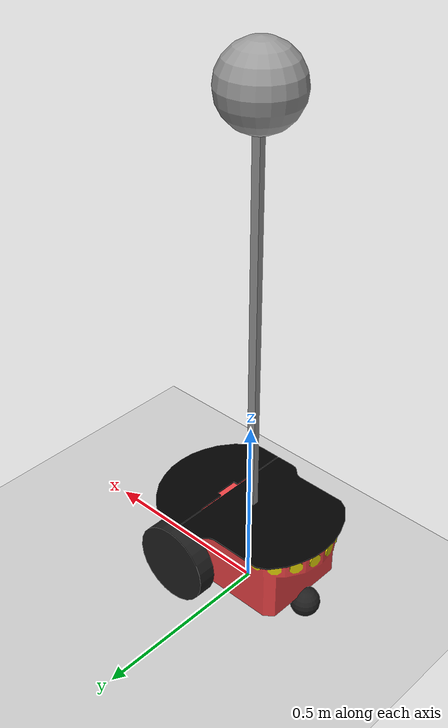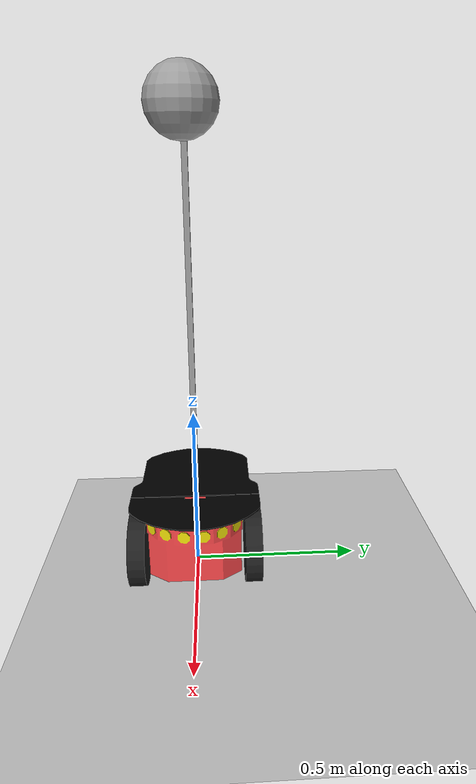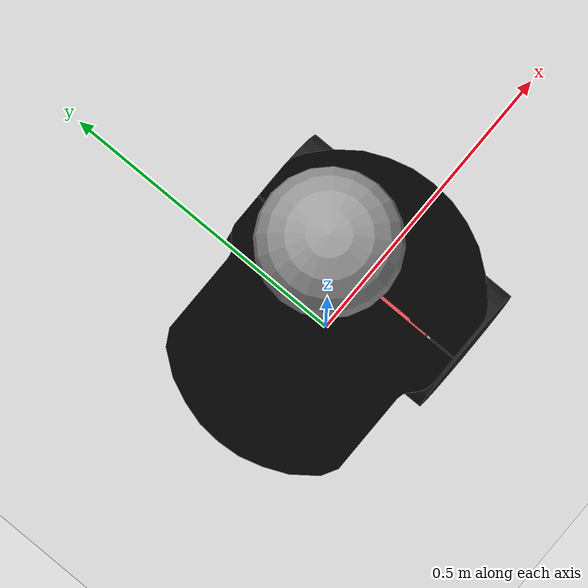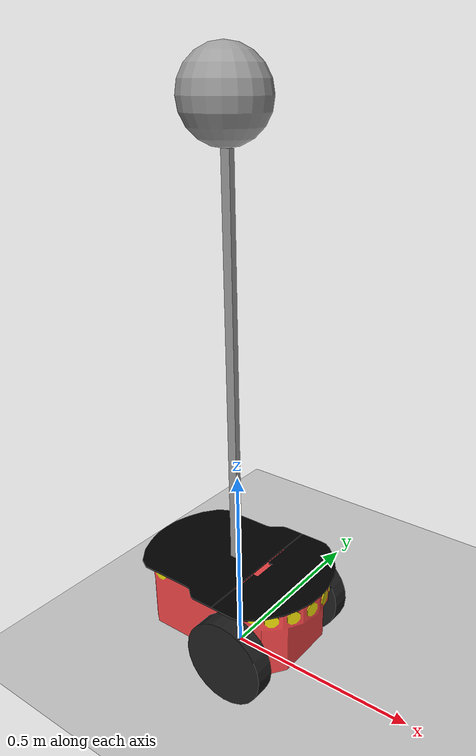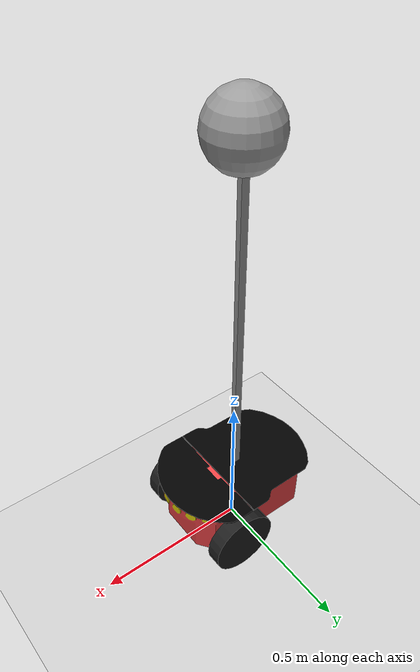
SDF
<sdf version="1.6">
 <world name="default">
  <light name="sun" type="directional">
   <pose>0 0 10 0 -0 0</pose>
   <diffuse>0.8 0.8 0.8 1</diffuse>
   <specular>0.2 0.2 0.2 1</specular>
   <attenuation>
    <range>1000</range>
    <constant>0.9</constant>
    <linear>0.01</linear>
    <quadratic>0.001</quadratic>
   </attenuation>
   <direction>-0.5 0.1 -0.9</direction>
  </light>
  <model name="ground_plane">
   <static>1</static>
   <link name="link">
    <collision name="collision">
     <geometry><plane><normal>0 0 1</normal><size>100 100</size></plane></geometry>
     <surface><friction><ode><mu>100</mu><mu2>50</mu2></ode></friction></surface>
    </collision>
    <visual name="visual">
     <cast_shadows>0</cast_shadows>
     <geometry><plane><normal>0 0 1</normal><size>100 100</size></plane></geometry>
     <material>
      <script><uri>file://media/materials/scripts/gazebo.material</uri><name>Gazebo/Grey</name></script>
     </material>
    </visual>
   </link>
  </model>
  <gravity>0 0 -9.8</gravity>
  <magnetic_field>6e-06 2.3e-05 -4.2e-05</magnetic_field>
  <atmosphere type="adiabatic"/>
  <physics name="default_physics" default="0" type="ode">
   <max_step_size>0.001</max_step_size>
   <real_time_factor>1</real_time_factor>
   <real_time_update_rate>1000</real_time_update_rate>
  </physics>
  <scene><ambient>0.4 0.4 0.4 1</ambient><background>0.7 0.7 0.7 1</background><shadows>1</shadows></scene>
  <spherical_coordinates>
   <surface_model>EARTH_WGS84</surface_model>
   <latitude_deg>0</latitude_deg>
   <longitude_deg>0</longitude_deg>
   <elevation>0</elevation>
   <heading_deg>0</heading_deg>
  </spherical_coordinates>
  <model name="pioneer2dx_ball">
   <link name="chassis">
    <pose>-0 -0 0.16 0 -0 0</pose>
    <inertial>
     <mass>5.67</mass>
     <inertia><ixx>0.07</ixx><iyy>0.08</iyy><izz>0.1</izz><ixy>0</ixy><ixz>0</ixz><iyz>0</iyz></inertia>
    </inertial>
    <self_collide>1</self_collide>
    <visual name="castor_visual">
     <pose>-0.2 0 -0.12 0 -0 0</pose>
     <geometry><sphere><radius>0.04</radius></sphere></geometry>
     <material>
      <script><uri>file://media/materials/scripts/gazebo.material</uri><name>Gazebo/FlatBlack</name></script>
      <shader type="pixel"/>
      <emissive>0 0 0 1</emissive>
     </material>
    </visual>
    <visual name="visual">
     <pose>0 0 0.04 0 -0 0</pose>
     <geometry><mesh><uri>model://pioneer2dx/meshes/chassis.dae</uri></mesh></geometry>
     <material><shader type="pixel"/><emissive>0 0 0 1</emissive></material>
    </visual>
    <collision name="collision">
     <geometry><box><size>0.445 0.277 0.17</size></box></geometry>
     <surface>
      <friction>
       <ode><mu>1</mu><mu2>1</mu2><fdir1>0 0 0</fdir1><slip1>0</slip1><slip2>0</slip2></ode>
       <torsional>
        <coefficient>1</coefficient>
        <patch_radius>0</patch_radius>
        <surface_radius>0</surface_radius>
        <use_patch_radius>1</use_patch_radius>
        <ode><slip>0</slip></ode>
       </torsional>
      </friction>
      <bounce><restitution_coefficient>0</restitution_coefficient><threshold>1e+06</threshold></bounce>
      <contact>
       <collide_without_contact>0</collide_without_contact>
       <collide_without_contact_bitmask>1</collide_without_contact_bitmask>
       <collide_bitmask>1</collide_bitmask>
       <ode>
        <soft_cfm>0</soft_cfm>
        <soft_erp>0.2</soft_erp>
        <kp>1e+13</kp>
        <kd>1</kd>
        <max_vel>0.01</max_vel>
        <min_depth>0</min_depth>
       </ode>
       <bullet>
        <split_impulse>1</split_impulse>
        <split_impulse_penetration_threshold>-0.01</split_impulse_penetration_threshold>
        <soft_cfm>0</soft_cfm>
        <soft_erp>0.2</soft_erp>
        <kp>1e+13</kp>
        <kd>1</kd>
       </bullet>
      </contact>
     </surface>
    </collision>
    <collision name="castor_collision">
     <pose>-0.2 0 -0.12 0 -0 0</pose>
     <geometry><sphere><radius>0.04</radius></sphere></geometry>
     <surface>
      <friction>
       <ode><mu>0</mu><mu2>0</mu2><fdir1>0 0 0</fdir1><slip1>1</slip1><slip2>1</slip2></ode>
       <torsional>
        <coefficient>1</coefficient>
        <patch_radius>0</patch_radius>
        <surface_radius>0</surface_radius>
        <use_patch_radius>1</use_patch_radius>
        <ode><slip>0</slip></ode>
       </torsional>
      </friction>
      <bounce><restitution_coefficient>0</restitution_coefficient><threshold>1e+06</threshold></bounce>
      <contact>
       <collide_without_contact>0</collide_without_contact>
       <collide_without_contact_bitmask>1</collide_without_contact_bitmask>
       <collide_bitmask>1</collide_bitmask>
       <ode>
        <soft_cfm>0</soft_cfm>
        <soft_erp>0.2</soft_erp>
        <kp>1e+13</kp>
        <kd>1</kd>
        <max_vel>0.01</max_vel>
        <min_depth>0</min_depth>
       </ode>
       <bullet>
        <split_impulse>1</split_impulse>
        <split_impulse_penetration_threshold>-0.01</split_impulse_penetration_threshold>
        <soft_cfm>0</soft_cfm>
        <soft_erp>0.2</soft_erp>
        <kp>1e+13</kp>
        <kd>1</kd>
       </bullet>
      </contact>
     </surface>
    </collision>
   </link>
   <link name="left_wheel">
    <pose>0.1 0.17 0.11 0.000117 1.5707 1.57082</pose>
    <inertial>
     <mass>1.5</mass>
     <inertia><ixx>0.0051</ixx><iyy>0.0051</iyy><izz>0.009</izz><ixy>0</ixy><ixz>0</ixz><iyz>0</iyz></inertia>
    </inertial>
    <visual name="visual">
     <geometry><cylinder><radius>0.11</radius><length>0.05</length></cylinder></geometry>
     <material>
      <script><uri>file://media/materials/scripts/gazebo.material</uri><name>Gazebo/FlatBlack</name></script>
      <shader type="pixel"/>
     </material>
    </visual>
    <collision name="collision">
     <geometry><cylinder><radius>0.11</radius><length>0.05</length></cylinder></geometry>
     <surface>
      <friction>
       <ode><mu>100000</mu><mu2>100000</mu2><fdir1>0 0 0</fdir1><slip1>0</slip1><slip2>0</slip2></ode>
       <torsional>
        <coefficient>1</coefficient>
        <patch_radius>0</patch_radius>
        <surface_radius>0</surface_radius>
        <use_patch_radius>1</use_patch_radius>
        <ode><slip>0</slip></ode>
       </torsional>
      </friction>
      <bounce><restitution_coefficient>0</restitution_coefficient><threshold>1e+06</threshold></bounce>
      <contact>
       <collide_without_contact>0</collide_without_contact>
       <collide_without_contact_bitmask>1</collide_without_contact_bitmask>
       <collide_bitmask>1</collide_bitmask>
       <ode>
        <soft_cfm>0</soft_cfm>
        <soft_erp>0.2</soft_erp>
        <kp>1e+13</kp>
        <kd>1</kd>
        <max_vel>0.01</max_vel>
        <min_depth>0</min_depth>
       </ode>
       <bullet>
        <split_impulse>1</split_impulse>
        <split_impulse_penetration_threshold>-0.01</split_impulse_penetration_threshold>
        <soft_cfm>0</soft_cfm>
        <soft_erp>0.2</soft_erp>
        <kp>1e+13</kp>
        <kd>1</kd>
       </bullet>
      </contact>
     </surface>
    </collision>
   </link>
   <link name="link_1">
    <inertial>
     <mass>0.000382729</mass>
     <inertia>
      <ixx>3.19027e-05</ixx>
      <ixy>0</ixy>
      <ixz>0</ixz>
      <iyy>3.19113e-05</iyy>
      <iyz>0</iyz>
      <izz>2.59062e-08</izz>
     </inertia>
    </inertial>
    <pose>-0.00873 0 0.767708 0 -0 0</pose>
    <self_collide>1</self_collide>
    <visual name="visual">
     <geometry><box><size>0.023268 0.016457 1</size></box></geometry>
     <material>
      <lighting>1</lighting>
      <script><uri>file://media/materials/scripts/gazebo.material</uri><name>Gazebo/Grey</name></script>
      <shader type="pixel"/>
      <emissive>0 0 0 1</emissive>
     </material>
    </visual>
    <collision name="collision">
     <geometry><box><size>0.023268 0.016457 1</size></box></geometry>
     <surface>
      <friction>
       <ode><mu>1</mu><mu2>1</mu2><fdir1>0 0 0</fdir1><slip1>0</slip1><slip2>0</slip2></ode>
       <torsional>
        <coefficient>1</coefficient>
        <patch_radius>0</patch_radius>
        <surface_radius>0</surface_radius>
        <use_patch_radius>1</use_patch_radius>
        <ode><slip>0</slip></ode>
       </torsional>
      </friction>
      <bounce><restitution_coefficient>0</restitution_coefficient><threshold>1e+06</threshold></bounce>
      <contact>
       <collide_without_contact>0</collide_without_contact>
       <collide_without_contact_bitmask>1</collide_without_contact_bitmask>
       <collide_bitmask>1</collide_bitmask>
       <ode>
        <soft_cfm>0</soft_cfm>
        <soft_erp>0.2</soft_erp>
        <kp>1e+13</kp>
        <kd>1</kd>
        <max_vel>0.01</max_vel>
        <min_depth>0</min_depth>
       </ode>
       <bullet>
        <split_impulse>1</split_impulse>
        <split_impulse_penetration_threshold>-0.01</split_impulse_penetration_threshold>
        <soft_cfm>0</soft_cfm>
        <soft_erp>0.2</soft_erp>
        <kp>1e+13</kp>
        <kd>1</kd>
       </bullet>
      </contact>
     </surface>
    </collision>
   </link>
   <link name="link_2">
    <inertial>
     <mass>0.5</mass>
     <inertia>
      <ixx>0.00200981</ixx>
      <ixy>0</ixy>
      <ixz>0</ixz>
      <iyy>0.00200981</iyy>
      <iyz>0</iyz>
      <izz>0.00200981</izz>
     </inertia>
    </inertial>
    <pose>-0.008115 -0.004327 1.36735 0 -0 0</pose>
    <self_collide>1</self_collide>
    <visual name="visual">
     <geometry><sphere><radius>0.100245</radius></sphere></geometry>
     <material>
      <lighting>1</lighting>
      <script><uri>file://media/materials/scripts/gazebo.material</uri><name>Gazebo/Grey</name></script>
      <shader type="pixel"><normal_map>__default__</normal_map></shader>
      <emissive>0 0 0 1</emissive>
     </material>
    </visual>
    <collision name="collision">
     <geometry><sphere><radius>0.100245</radius></sphere></geometry>
     <surface>
      <friction>
       <ode><mu>1</mu><mu2>1</mu2><fdir1>0 0 0</fdir1><slip1>0</slip1><slip2>0</slip2></ode>
       <torsional>
        <coefficient>1</coefficient>
        <patch_radius>0</patch_radius>
        <surface_radius>0</surface_radius>
        <use_patch_radius>1</use_patch_radius>
        <ode><slip>0</slip></ode>
       </torsional>
      </friction>
      <bounce><restitution_coefficient>0</restitution_coefficient><threshold>1e+06</threshold></bounce>
      <contact>
       <collide_without_contact>0</collide_without_contact>
       <collide_without_contact_bitmask>1</collide_without_contact_bitmask>
       <collide_bitmask>1</collide_bitmask>
       <ode>
        <soft_cfm>0</soft_cfm>
        <soft_erp>0.2</soft_erp>
        <kp>1e+13</kp>
        <kd>1</kd>
        <max_vel>0.01</max_vel>
        <min_depth>0</min_depth>
       </ode>
       <bullet>
        <split_impulse>1</split_impulse>
        <split_impulse_penetration_threshold>-0.01</split_impulse_penetration_threshold>
        <soft_cfm>0</soft_cfm>
        <soft_erp>0.2</soft_erp>
        <kp>1e+13</kp>
        <kd>1</kd>
       </bullet>
      </contact>
     </surface>
    </collision>
   </link>
   <link name="right_wheel">
    <pose>0.1 -0.17 0.11 0.000117 1.5707 1.57082</pose>
    <inertial>
     <mass>1.5</mass>
     <inertia><ixx>0.0051</ixx><iyy>0.0051</iyy><izz>0.009</izz><ixy>0</ixy><ixz>0</ixz><iyz>0</iyz></inertia>
    </inertial>
    <visual name="visual">
     <geometry><cylinder><radius>0.11</radius><length>0.05</length></cylinder></geometry>
     <material>
      <script><uri>file://media/materials/scripts/gazebo.material</uri><name>Gazebo/FlatBlack</name></script>
      <shader type="pixel"/>
      <emissive>0 0 0 1</emissive>
     </material>
    </visual>
    <collision name="collision">
     <geometry><cylinder><radius>0.11</radius><length>0.05</length></cylinder></geometry>
     <surface>
      <friction>
       <ode><mu>100000</mu><mu2>100000</mu2><fdir1>0 0 0</fdir1><slip1>0</slip1><slip2>0</slip2></ode>
       <torsional>
        <coefficient>1</coefficient>
        <patch_radius>0</patch_radius>
        <surface_radius>0</surface_radius>
        <use_patch_radius>1</use_patch_radius>
        <ode><slip>0</slip></ode>
       </torsional>
      </friction>
      <bounce><restitution_coefficient>0</restitution_coefficient><threshold>1e+06</threshold></bounce>
      <contact>
       <collide_without_contact>0</collide_without_contact>
       <collide_without_contact_bitmask>1</collide_without_contact_bitmask>
       <collide_bitmask>1</collide_bitmask>
       <ode>
        <soft_cfm>0</soft_cfm>
        <soft_erp>0.2</soft_erp>
        <kp>1e+13</kp>
        <kd>1</kd>
        <max_vel>0.01</max_vel>
        <min_depth>0</min_depth>
       </ode>
       <bullet>
        <split_impulse>1</split_impulse>
        <split_impulse_penetration_threshold>-0.01</split_impulse_penetration_threshold>
        <soft_cfm>0</soft_cfm>
        <soft_erp>0.2</soft_erp>
        <kp>1e+13</kp>
        <kd>1</kd>
       </bullet>
      </contact>
     </surface>
    </collision>
   </link>
   <joint name="chassis_JOINT_0" type="revolute">
    <parent>chassis</parent>
    <child>link_1</child>
    <pose>0 0 -0.5 0 -0 0</pose>
    <axis>
     <xyz>0 1 0</xyz>
     <use_parent_model_frame>0</use_parent_model_frame>
     <limit>
      <lower>-1.79769e+308</lower>
      <upper>1.79769e+308</upper>
      <effort>-1</effort>
      <velocity>-1</velocity>
     </limit>
     <dynamics>
      <spring_reference>0</spring_reference>
      <spring_stiffness>0</spring_stiffness>
      <damping>0</damping>
      <friction>0</friction>
     </dynamics>
    </axis>
    <physics>
     <ode><limit><cfm>0</cfm><erp>0.2</erp></limit><suspension><cfm>0</cfm><erp>0.2</erp></suspension></ode>
    </physics>
   </joint>
   <joint name="left_wheel_hinge" type="revolute">
    <parent>chassis</parent>
    <child>left_wheel</child>
    <pose>0 0 -0.03 0 -0 0</pose>
    <axis>
     <xyz>0 1 0</xyz>
     <use_parent_model_frame>1</use_parent_model_frame>
     <limit><lower>-1e+16</lower><upper>1e+16</upper><effort>-1</effort><velocity>-1</velocity></limit>
     <dynamics>
      <spring_reference>0</spring_reference>
      <spring_stiffness>0</spring_stiffness>
      <damping>0</damping>
      <friction>0</friction>
     </dynamics>
    </axis>
    <physics>
     <ode><limit><cfm>0</cfm><erp>0.2</erp></limit><suspension><cfm>0</cfm><erp>0.2</erp></suspension></ode>
    </physics>
   </joint>
   <joint name="link_1_JOINT_2" type="fixed">
    <parent>link_1</parent>
    <child>link_2</child>
    <physics>
     <ode><limit><cfm>0</cfm><erp>0.2</erp></limit><suspension><cfm>0</cfm><erp>0.2</erp></suspension></ode>
    </physics>
   </joint>
   <joint name="right_wheel_hinge" type="revolute">
    <parent>chassis</parent>
    <child>right_wheel</child>
    <pose>0 0 0.03 0 -0 0</pose>
    <axis>
     <xyz>0 1 0</xyz>
     <use_parent_model_frame>1</use_parent_model_frame>
     <limit><lower>-1e+16</lower><upper>1e+16</upper><effort>-1</effort><velocity>-1</velocity></limit>
     <dynamics>
      <spring_reference>0</spring_reference>
      <spring_stiffness>0</spring_stiffness>
      <damping>0</damping>
      <friction>0</friction>
     </dynamics>
    </axis>
    <physics>
     <ode><limit><cfm>0</cfm><erp>0.2</erp></limit><suspension><cfm>0</cfm><erp>0.2</erp></suspension></ode>
    </physics>
   </joint>
   <static>0</static>
   <plugin name="diff_drive" filename="libDiffDrivePlugin.so">
    <left_joint>left_wheel_hinge</left_joint>
    <right_joint>right_wheel_hinge</right_joint>
    <torque>5</torque>
   </plugin>
   <plugin name="inverted_pendulum_controller" filename="libInvertedPendulumControllerPlugin.so"/>
  </model>
 </world>
</sdf>
